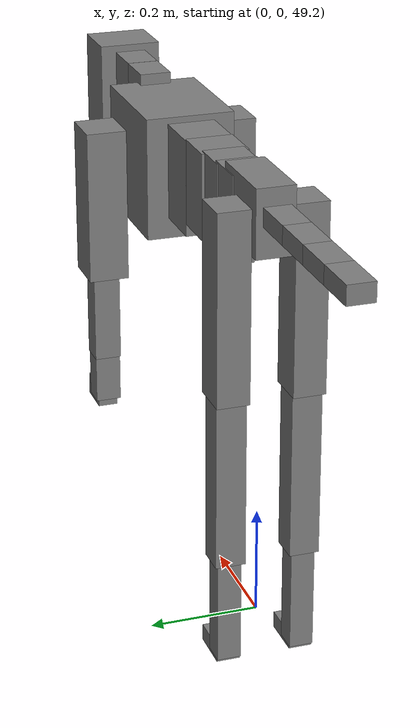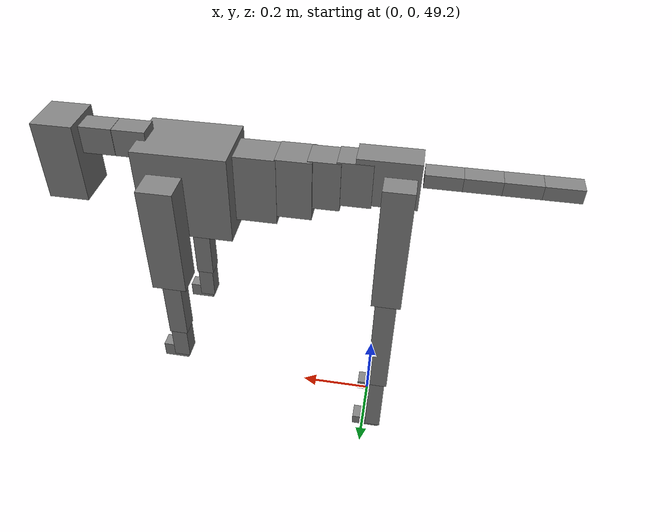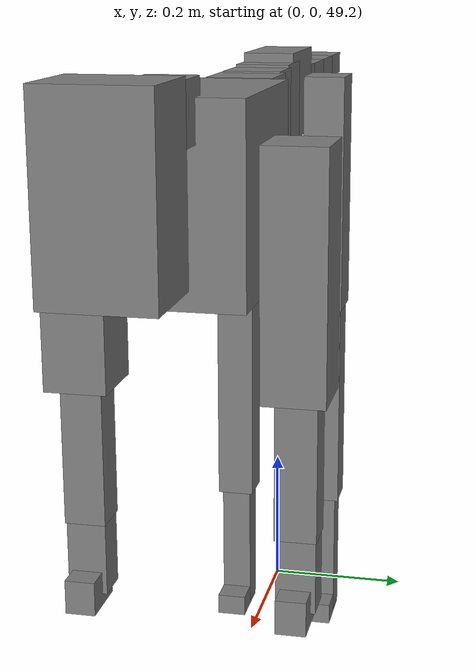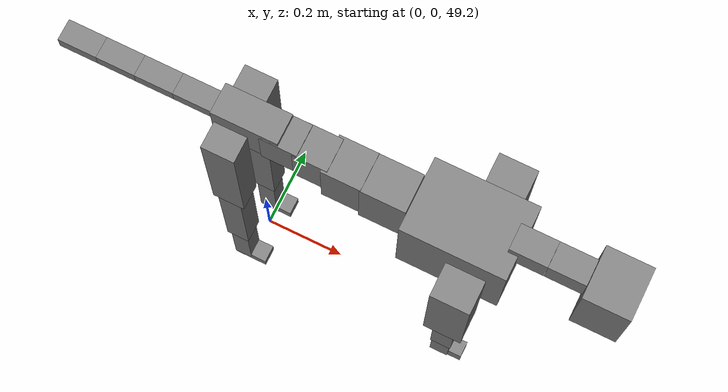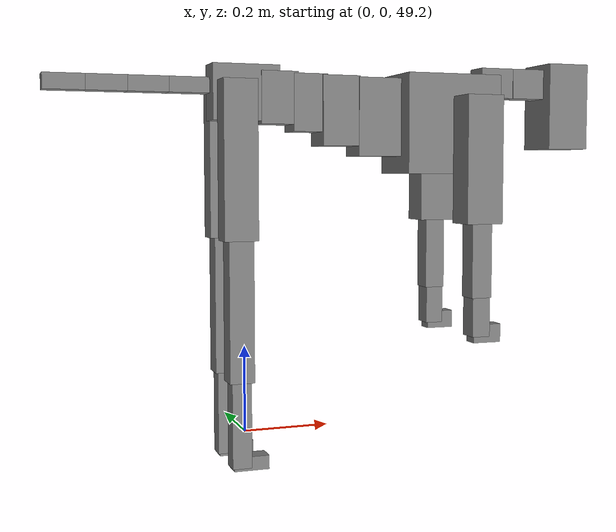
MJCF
<mujoco model="dog">

    <default>
        <joint armature="0.02" stiffness="1" damping="0.2" limited="true"/>
        <geom condim="3" friction="1 0.05 0.05" margin="0.01"/>
        <motor ctrllimited="true" ctrlrange="-1.0 1.0" forcelimited="true" gear="50"/>
    </default>

    <compiler inertiafromgeom="true" angle="radian"/>

    <option timestep="0.016" iterations="50" tolerance="1e-10" solver="Newton" jacobian="dense" cone="pyramidal"/>

    <size nconmax="20000" njmax="60000" nstack="5000000"/>
    <visual>
        <map force="0.1" zfar="30"/>
        <rgba haze="0.15 0.25 0.35 1"/>
        <quality shadowsize="2048"/>
        <global offwidth="800" offheight="800"/>
    </visual>

    <asset>
        <texture type="skybox" builtin="gradient" rgb1="0.3 0.5 0.7" rgb2="0 0 0" width="512" height="512"/>
        <texture name="texplane" type="2d" builtin="checker" rgb1=".2 .3 .4" rgb2=".1 0.15 0.2" width="512" height="512"
                 mark="cross" markrgb=".8 .8 .8"/>
        <texture name="texgeom" type="cube" builtin="flat" mark="cross" width="127" height="1278" rgb1="0.8 0.6 0.4"
                 rgb2="0.8 0.6 0.4" markrgb="1 1 1" random="0.01"/>

        <material name="matplane" reflectance="0.3" texture="texplane" texrepeat="1 1" texuniform="true"/>
        <material name="matgeom" texture="texgeom" texuniform="true" rgba="0.8 0.6 .4 1"/>
    </asset>

    <worldbody>
        <geom name="floor" pos="0 0 0" size="0 0 .25" type="plane" material="matplane" condim="3"/>

        <light directional="false" diffuse=".2 .2 .2" specular="0 0 0" pos="0 0 5" dir="0 0 -1" castshadow="false"/>
        <light mode="targetbodycom" target="torso" directional="false" diffuse=".8 .8 .8" specular="0.3 0.3 0.3"
               pos="0 0 4.0" dir="0 0 -1"/>

        <body name="root" pos="0 0 50">
            <freejoint name="root_1"/>
            <geom type="box" pos="0 0 -0.02" size="0.0774  0.0358  0.063" density="2030"/>

            <body name="spine1" pos="0.054 0 0">
                <joint name="spine1_y" axis="0 1 0" range="0 0.7" limited="true"/>
                <geom type="box" pos="0.02375 0 -0.03" size="0.04375  0.0375  0.05985" density="2030"/>

                <body name="spine2" pos="0.0612 0 0">
                    <joint name="spine2_y" axis="0 1 0" range="-0.15 0.15" limited="true"/>
                    <geom type="box" pos="0.03555  0  -0.04" size="0.04055  0.039  0.06615" density="2030"/>

                    <body name="spine3" pos="0.0730 0 0">
                        <joint name="spine3_y" axis="0 1 0" range="-0.15 0.15" limited="true"/>
                        <geom type="box" pos="0.03555  0  -0.057" size="0.04555  0.0445  0.081" density="2030"/>

                        <body name="spine4" pos="0.0780 0 0">
                            <joint name="spine4_y" axis="0 1 0" range="-0.15 0.15" limited="true"/>
                            <geom type="box" pos="0.05265  0  -0.07" size="0.05265  0.045  0.09135" density="2030"/>

                            <body name="torso" pos="0.1082 0 0">
                                <joint name="torso_y" axis="0 1 0" range="-0.15 0.15" limited="true"/>
                                <geom type="box" pos="0.11925  0  -0.085" size="0.11925  0.085  0.11745"
                                      density="2030"/>

                                <body name="neck1" pos="0.2160  0   0.0180">
                                    <joint name="neck1_y" axis="0 1 0" range="-1.2  -1" limited="true"/>
                                    <geom type="box" pos="0.0423  0  0" size="0.0423  0.03  0.036" density="2325"/>

                                    <body name="neck2" pos="0.0853  0  0">
                                        <joint name="neck2_y" axis="0 1 0" range="0.1  0" limited="true"/>
                                        <geom type="box" pos="0.0423  0  0" size="0.0423  0.03  0.036" density="2325"/>

                                        <body name="head" pos="0.0853  0  0">
                                            <joint name="head_y" axis="0 1 0" range="-0.3  -0.2" limited="true"/>
                                            <geom type="box" pos="0.0531  0  -0.055" size="0.0531  0.06  0.1044"
                                                  density="4030"/>

                                        </body>
                                    </body>
                                </body>

                                <body name="front_shoulder" pos="0.156  0   -0.0480">
                                    <joint name="front_shoulder_y" axis="0 1 0" range="-1 1.5" limited="true"/>
                                    <geom type="box" pos="0 0.13 -0.1222" size="0.0450  0.0385  0.1489" density="1158"/>
                                    <geom type="box" pos="0 -0.13 -0.1222" size="0.0450  0.0385  0.1489"
                                          density="1158"/>

                                    <body name="front_elbow" pos="0  0  -0.2445">
                                        <joint name="front_elbow_y" axis="0 1 0" range="-2 0" limited="true"/>
                                        <geom type="box" pos="0 0.13 -0.0999" size="0.0249  0.0255  0.0999"
                                              density="1081"/>
                                        <geom type="box" pos="0 -0.13 -0.0999" size="0.0249  0.0255  0.0999"
                                              density="1081"/>

                                        <body name="front_wrist" pos="0  0  -0.1997">
                                            <joint name="front_wrist_y" axis="0 1 0" range="-0.2 0" limited="true"/>
                                            <geom type="box" pos="0 0.13 -0.0392" size="0.0220  0.0244  0.0524"
                                                  density="1664"/>
                                            <geom type="box" pos="0 -0.13 -0.0392" size="0.0220  0.0244  0.0524"
                                                  density="1664"/>

                                            <body name="front_finger_end" pos="0  0  -0.0784">
                                                <joint name="front_finger_y" axis="0 1 0" range="-0.4 1"
                                                       limited="true"/>
                                                <geom type="box" pos="0.0187  0.13  -0.0066"
                                                      size="0.0343  0.0187  0.0216" density="1515"/>
                                                <geom type="box" pos="0.0187  -0.13  -0.0066"
                                                      size="0.0343  0.0187  0.0216" density="1515"/>

                                            </body>

                                        </body>
                                    </body>
                                </body>

                            </body>
                        </body>
                    </body>
                </body>
            </body>

            <body name="back_hip" pos="-0.03 0 -0.018">
                <joint name="back_hip_y" axis="0 1 0" range="-1.5 0.3" limited="true"/>
                <geom type="box" pos="0 0.07 -0.1554" size="0.0387  0.0304  0.1782" density="1154"/>
                <geom type="box" pos="0 -0.07 -0.1554" size="0.0387  0.0304  0.1782" density="1154"/>

                <body name="back_knee" pos="0  0  -0.3108">
                    <joint name="back_knee_y" axis="0 1 0" range="0 2.8" limited="true"/>
                    <geom type="box" pos="0 0.07 -0.1623" size="0.0283  0.0279  0.1778" density="1227"/>
                    <geom type="box" pos="0 -0.07 -0.1623" size="0.0283  0.0279  0.1778" density="1227"/>

                    <body name="back_ankle" pos="0  0  -0.3245">
                        <joint name="back_ankle_y" axis="0 1 0" range="-2.2 0" limited="true"/>
                        <geom type="box" pos="0 0.07 -0.0992" size="0.0222  0.0222  0.1105" density="1284"/>
                        <geom type="box" pos="0 -0.07 -0.0992" size="0.0222  0.0222  0.1105" density="1284"/>

                        <body name="back_toe_end" pos="0  0  -0.1985">
                            <joint name="back_toe_y" axis="0 1 0" range="-0.4 1" limited="true"/>
                            <geom type="box" pos="0.0220  0.07  -0.0008" size="0.0403  0.0220  0.0158" density="1515"/>
                            <geom type="box" pos="0.0220  -0.07  -0.0008" size="0.0403  0.0220  0.0158" density="1515"/>

                        </body>
                    </body>
                </body>
            </body>

            <body name="tail1" pos="-0.074 0 -0.006">
                <joint name="tail1_y" axis="0 1 0" range="-0.2 0.2" limited="true"/>
                <geom type="box" pos="-0.0536  0  0" size="0.045  0.025  0.0175" density="1587"/>

                <body name="tail2" pos="-0.09 0 0">
                    <joint name="tail2_y" axis="0 1 0" range="-0.2 0.2" limited="true"/>
                    <geom type="box" pos="-0.0536  0  0" size="0.045  0.025  0.0175" density="1587"/>

                    <body name="tail3" pos="-0.09 0 0">
                        <joint name="tail3_y" axis="0 1 0" range="-0.2 0.2" limited="true"/>
                        <geom type="box" pos="-0.0536  0  0" size="0.045  0.025  0.0175" density="1587"/>

                        <body name="tail4" pos="-0.09 0 0">
                            <joint name="tail4_y" axis="0 1 0" range="-0.2 0.2" limited="true"/>
                            <geom type="box" pos="-0.0536  0  0" size="0.045  0.025  0.0175" density="1587"/>

                        </body>
                    </body>
                </body>
            </body>
        </body>
    </worldbody>

    <actuator>
        <motor joint="spine1_y" forcerange="-150 150     "/>
        <motor joint="spine2_y" forcerange="-150 150     "/>
        <motor joint="spine3_y" forcerange="-150 150     "/>
        <motor joint="spine4_y" forcerange="-150 150     "/>
        <motor joint="torso_y" forcerange="-150 150     "/>
        <motor joint="neck1_y" forcerange="-100 100       "/>
        <motor joint="neck2_y" forcerange="-100 100       "/>
        <motor joint="head_y" forcerange="-150 150       "/>
        <motor joint="front_shoulder_y" forcerange="-165.01 191.62"/>
        <motor joint="front_elbow_y" forcerange="-150.75 134.53"/>
        <motor joint="front_wrist_y" forcerange="-59.35 136.01"/>
        <motor joint="front_finger_y" forcerange="-33.85 25.84"/>
        <motor joint="back_hip_y" forcerange="-343.22 261.79"/>
        <motor joint="back_knee_y" forcerange="-283.78 321.46"/>
        <motor joint="back_angle_y" forcerange="-191.22 63.29"/>
        <motor joint="back_toe_y" forcerange="-56.22 39.63"/>
        <motor joint="tail1_y" forcerange="-50 50     "/>
        <motor joint="tail2_y" forcerange="-50 50     "/>
        <motor joint="tail3_y" forcerange="-50 50     "/>
        <motor joint="tail4_y" forcerange="-50 50     "/>
    </actuator>
</mujoco>
